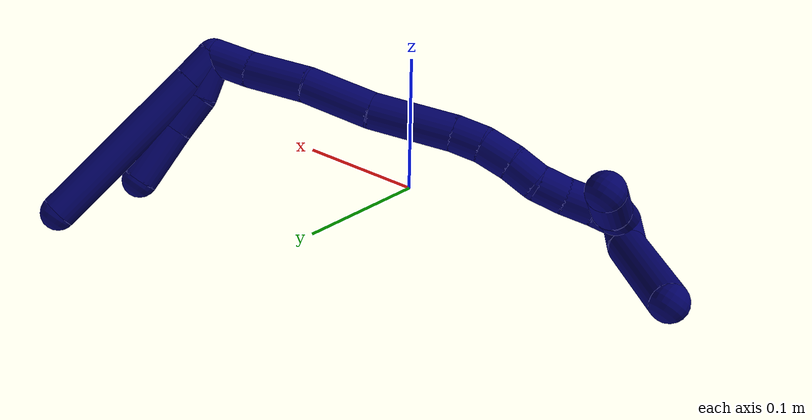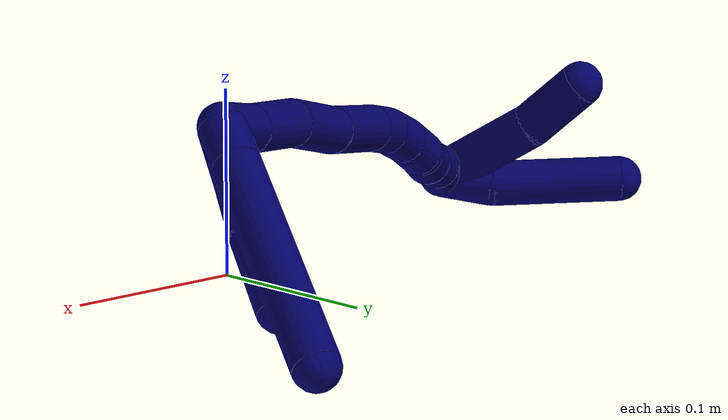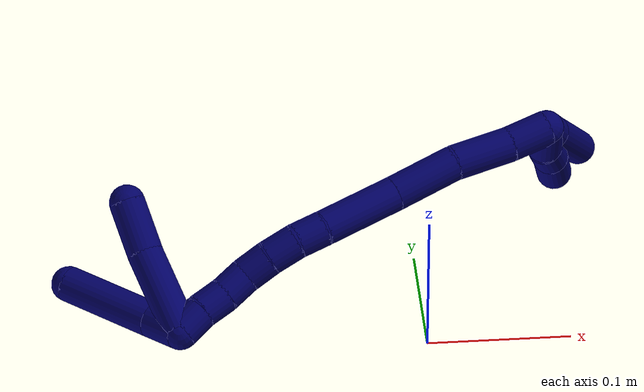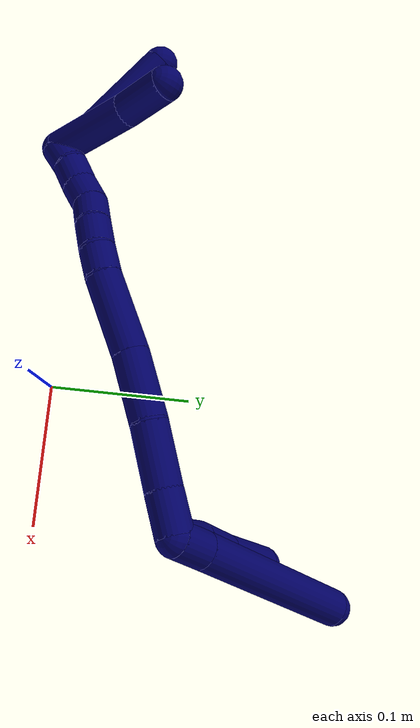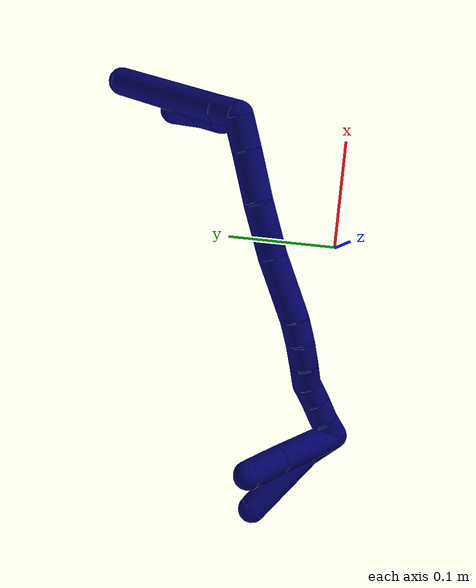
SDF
<sdf version="1.7">
 <world name="default">
  <model name="bin">
   <static>1</static>
   <link name="bottom">
    <collision name="collision-bottom">
     <pose>0 0 -0.01 0 -0 0</pose>
     <geometry><box><size>0.8 0.6 0.02</size></box></geometry>
     <surface>
      <friction><ode><mu>100</mu><mu2>100</mu2></ode></friction>
      <contact><collide_bitmask>65535</collide_bitmask></contact>
     </surface>
    </collision>
   </link>
   <link name="west_wall">
    <collision name="collision-west_wall">
     <pose>-0.41 0 0.1 0 -0 0</pose>
     <geometry><box><size>0.02 0.6 0.2</size></box></geometry>
     <surface>
      <friction><ode><mu>100</mu><mu2>100</mu2></ode></friction>
      <contact><collide_bitmask>65535</collide_bitmask></contact>
     </surface>
    </collision>
   </link>
   <link name="east_wall">
    <collision name="collision-east_wall">
     <pose>0.41 0 0.1 0 -0 0</pose>
     <geometry><box><size>0.02 0.6 0.2</size></box></geometry>
     <surface>
      <friction><ode><mu>100</mu><mu2>100</mu2></ode></friction>
      <contact><collide_bitmask>65535</collide_bitmask></contact>
     </surface>
    </collision>
   </link>
   <link name="south_wall">
    <collision name="collision-south_wall">
     <pose>0 -0.31 0.1 0 -0 0</pose>
     <geometry><box><size>0.8 0.02 0.2</size></box></geometry>
     <surface>
      <friction><ode><mu>100</mu><mu2>100</mu2></ode></friction>
      <contact><collide_bitmask>65535</collide_bitmask></contact>
     </surface>
    </collision>
   </link>
   <link name="north_wall">
    <collision name="collision-north_wall">
     <pose>0 0.31 0.1 0 -0 0</pose>
     <geometry><box><size>0.8 0.02 0.2</size></box></geometry>
     <surface>
      <friction><ode><mu>100</mu><mu2>100</mu2></ode></friction>
      <contact><collide_bitmask>65535</collide_bitmask></contact>
     </surface>
    </collision>
   </link>
  </model>
  <model name="7">
   <static>0</static>
   <link name="7">
    <collision name="collision-cylinder-e_1_2_8">
     <pose>0.001696 0.000565 0.011634 -0.04856 0.144598 -0.003518</pose>
     <geometry><cylinder><radius>0.0125</radius><length>0.023542</length></cylinder></geometry>
     <surface>
      <friction><ode><mu>1.16</mu><mu2>1.16</mu2><slip1>0</slip1><slip2>0</slip2></ode></friction>
      <contact><ode><kp>1e+06</kp><kd>1</kd><max_vel>0</max_vel><min_depth>0.001</min_depth></ode></contact>
     </surface>
    </collision>
    <visual name="visual-cylinder-e_1_2_8">
     <pose>0.001696 0.000565 0.011634 -0.04856 0.144598 -0.003518</pose>
     <geometry><cylinder><radius>0.0125</radius><length>0.023542</length></cylinder></geometry>
     <material><ambient>0.003922 0 0.403922 1</ambient></material>
    </visual>
    <collision name="collision-cylinder-e_2_8_6">
     <pose>0.013681 0.003923 0.085593 -0.044776 0.163442 -0.003668</pose>
     <geometry><cylinder><radius>0.0125</radius><length>0.126458</length></cylinder></geometry>
     <surface>
      <friction><ode><mu>1.16</mu><mu2>1.16</mu2><slip1>0</slip1><slip2>0</slip2></ode></friction>
      <contact><ode><kp>1e+06</kp><kd>1</kd><max_vel>0</max_vel><min_depth>0.001</min_depth></ode></contact>
     </surface>
    </collision>
    <visual name="visual-cylinder-e_2_8_6">
     <pose>0.013681 0.003923 0.085593 -0.044776 0.163442 -0.003668</pose>
     <geometry><cylinder><radius>0.0125</radius><length>0.126458</length></cylinder></geometry>
     <material><ambient>0.003922 0 0.403922 1</ambient></material>
    </visual>
    <collision name="collision-cylinder-e_1_2_9">
     <pose>-0.003665 0.002242 0.013985 -0.158963 -0.253191 0.020274</pose>
     <geometry><cylinder><radius>0.0125</radius><length>0.02926</length></cylinder></geometry>
     <surface>
      <friction><ode><mu>1.16</mu><mu2>1.16</mu2><slip1>0</slip1><slip2>0</slip2></ode></friction>
      <contact><ode><kp>1e+06</kp><kd>1</kd><max_vel>0</max_vel><min_depth>0.001</min_depth></ode></contact>
     </surface>
    </collision>
    <visual name="visual-cylinder-e_1_2_9">
     <pose>-0.003665 0.002242 0.013985 -0.158963 -0.253191 0.020274</pose>
     <geometry><cylinder><radius>0.0125</radius><length>0.02926</length></cylinder></geometry>
     <material><ambient>0.003922 0 0.403922 1</ambient></material>
    </visual>
    <collision name="collision-cylinder-e_2_9_10">
     <pose>-0.006871 0.006577 0.041807 -0.150091 0.032732 -0.002461</pose>
     <geometry><cylinder><radius>0.0125</radius><length>0.028003</length></cylinder></geometry>
     <surface>
      <friction><ode><mu>1.16</mu><mu2>1.16</mu2><slip1>0</slip1><slip2>0</slip2></ode></friction>
      <contact><ode><kp>1e+06</kp><kd>1</kd><max_vel>0</max_vel><min_depth>0.001</min_depth></ode></contact>
     </surface>
    </collision>
    <visual name="visual-cylinder-e_2_9_10">
     <pose>-0.006871 0.006577 0.041807 -0.150091 0.032732 -0.002461</pose>
     <geometry><cylinder><radius>0.0125</radius><length>0.028003</length></cylinder></geometry>
     <material><ambient>0.003922 0 0.403922 1</ambient></material>
    </visual>
    <collision name="collision-cylinder-e_3_10_5">
     <pose>-0.006885 0.010572 0.076922 -0.08921 -0.022079 0.000986</pose>
     <geometry><cylinder><radius>0.0125</radius><length>0.042737</length></cylinder></geometry>
     <surface>
      <friction><ode><mu>1.16</mu><mu2>1.16</mu2><slip1>0</slip1><slip2>0</slip2></ode></friction>
      <contact><ode><kp>1e+06</kp><kd>1</kd><max_vel>0</max_vel><min_depth>0.001</min_depth></ode></contact>
     </surface>
    </collision>
    <visual name="visual-cylinder-e_3_10_5">
     <pose>-0.006885 0.010572 0.076922 -0.08921 -0.022079 0.000986</pose>
     <geometry><cylinder><radius>0.0125</radius><length>0.042737</length></cylinder></geometry>
     <material><ambient>0.003922 0 0.403922 1</ambient></material>
    </visual>
    <collision name="collision-cylinder-e_1_2_11">
     <pose>-0.013266 -0.005239 -0.003092 2.10405 -1.14083 -1.68715</pose>
     <geometry><cylinder><radius>0.0125</radius><length>0.029189</length></cylinder></geometry>
     <surface>
      <friction><ode><mu>1.16</mu><mu2>1.16</mu2><slip1>0</slip1><slip2>0</slip2></ode></friction>
      <contact><ode><kp>1e+06</kp><kd>1</kd><max_vel>0</max_vel><min_depth>0.001</min_depth></ode></contact>
     </surface>
    </collision>
    <visual name="visual-cylinder-e_1_2_11">
     <pose>-0.013266 -0.005239 -0.003092 2.10405 -1.14083 -1.68715</pose>
     <geometry><cylinder><radius>0.0125</radius><length>0.029189</length></cylinder></geometry>
     <material><ambient>0.003922 0 0.403922 1</ambient></material>
    </visual>
    <collision name="collision-cylinder-e_2_11_12">
     <pose>-0.045018 -0.019571 -0.011978 2.138 -1.04278 -1.61669</pose>
     <geometry><cylinder><radius>0.0125</radius><length>0.042802</length></cylinder></geometry>
     <surface>
      <friction><ode><mu>1.16</mu><mu2>1.16</mu2><slip1>0</slip1><slip2>0</slip2></ode></friction>
      <contact><ode><kp>1e+06</kp><kd>1</kd><max_vel>0</max_vel><min_depth>0.001</min_depth></ode></contact>
     </surface>
    </collision>
    <visual name="visual-cylinder-e_2_11_12">
     <pose>-0.045018 -0.019571 -0.011978 2.138 -1.04278 -1.61669</pose>
     <geometry><cylinder><radius>0.0125</radius><length>0.042802</length></cylinder></geometry>
     <material><ambient>0.003922 0 0.403922 1</ambient></material>
    </visual>
    <collision name="collision-cylinder-e_3_12_13">
     <pose>-0.085756 -0.036026 -0.022273 2.11967 -1.20087 -1.76952</pose>
     <geometry><cylinder><radius>0.0125</radius><length>0.047733</length></cylinder></geometry>
     <surface>
      <friction><ode><mu>1.16</mu><mu2>1.16</mu2><slip1>0</slip1><slip2>0</slip2></ode></friction>
      <contact><ode><kp>1e+06</kp><kd>1</kd><max_vel>0</max_vel><min_depth>0.001</min_depth></ode></contact>
     </surface>
    </collision>
    <visual name="visual-cylinder-e_3_12_13">
     <pose>-0.085756 -0.036026 -0.022273 2.11967 -1.20087 -1.76952</pose>
     <geometry><cylinder><radius>0.0125</radius><length>0.047733</length></cylinder></geometry>
     <material><ambient>0.003922 0 0.403922 1</ambient></material>
    </visual>
    <collision name="collision-cylinder-e_4_13_14">
     <pose>-0.133969 -0.051987 -0.035342 2.35434 -1.13341 -1.98513</pose>
     <geometry><cylinder><radius>0.0125</radius><length>0.057318</length></cylinder></geometry>
     <surface>
      <friction><ode><mu>1.16</mu><mu2>1.16</mu2><slip1>0</slip1><slip2>0</slip2></ode></friction>
      <contact><ode><kp>1e+06</kp><kd>1</kd><max_vel>0</max_vel><min_depth>0.001</min_depth></ode></contact>
     </surface>
    </collision>
    <visual name="visual-cylinder-e_4_13_14">
     <pose>-0.133969 -0.051987 -0.035342 2.35434 -1.13341 -1.98513</pose>
     <geometry><cylinder><radius>0.0125</radius><length>0.057318</length></cylinder></geometry>
     <material><ambient>0.003922 0 0.403922 1</ambient></material>
    </visual>
    <collision name="collision-cylinder-e_5_14_15">
     <pose>-0.169427 -0.064105 -0.045843 2.07319 -1.17087 -1.68449</pose>
     <geometry><cylinder><radius>0.0125</radius><length>0.020621</length></cylinder></geometry>
     <surface>
      <friction><ode><mu>1.16</mu><mu2>1.16</mu2><slip1>0</slip1><slip2>0</slip2></ode></friction>
      <contact><ode><kp>1e+06</kp><kd>1</kd><max_vel>0</max_vel><min_depth>0.001</min_depth></ode></contact>
     </surface>
    </collision>
    <visual name="visual-cylinder-e_5_14_15">
     <pose>-0.169427 -0.064105 -0.045843 2.07319 -1.17087 -1.68449</pose>
     <geometry><cylinder><radius>0.0125</radius><length>0.020621</length></cylinder></geometry>
     <material><ambient>0.003922 0 0.403922 1</ambient></material>
    </visual>
    <collision name="collision-cylinder-e_6_15_16">
     <pose>-0.189506 -0.070584 -0.047991 1.64315 -1.29735 -1.3677</pose>
     <geometry><cylinder><radius>0.0125</radius><length>0.021981</length></cylinder></geometry>
     <surface>
      <friction><ode><mu>1.16</mu><mu2>1.16</mu2><slip1>0</slip1><slip2>0</slip2></ode></friction>
      <contact><ode><kp>1e+06</kp><kd>1</kd><max_vel>0</max_vel><min_depth>0.001</min_depth></ode></contact>
     </surface>
    </collision>
    <visual name="visual-cylinder-e_6_15_16">
     <pose>-0.189506 -0.070584 -0.047991 1.64315 -1.29735 -1.3677</pose>
     <geometry><cylinder><radius>0.0125</radius><length>0.021981</length></cylinder></geometry>
     <material><ambient>0.003922 0 0.403922 1</ambient></material>
    </visual>
    <collision name="collision-cylinder-e_7_16_17">
     <pose>-0.210008 -0.075625 -0.047344 1.1785 -1.34759 -0.980544</pose>
     <geometry><cylinder><radius>0.0125</radius><length>0.020344</length></cylinder></geometry>
     <surface>
      <friction><ode><mu>1.16</mu><mu2>1.16</mu2><slip1>0</slip1><slip2>0</slip2></ode></friction>
      <contact><ode><kp>1e+06</kp><kd>1</kd><max_vel>0</max_vel><min_depth>0.001</min_depth></ode></contact>
     </surface>
    </collision>
    <visual name="visual-cylinder-e_7_16_17">
     <pose>-0.210008 -0.075625 -0.047344 1.1785 -1.34759 -0.980544</pose>
     <geometry><cylinder><radius>0.0125</radius><length>0.020344</length></cylinder></geometry>
     <material><ambient>0.003922 0 0.403922 1</ambient></material>
    </visual>
    <collision name="collision-cylinder-e_8_17_18">
     <pose>-0.229785 -0.078215 -0.048114 2.83841 -1.39921 -2.78247</pose>
     <geometry><cylinder><radius>0.0125</radius><length>0.020008</length></cylinder></geometry>
     <surface>
      <friction><ode><mu>1.16</mu><mu2>1.16</mu2><slip1>0</slip1><slip2>0</slip2></ode></friction>
      <contact><ode><kp>1e+06</kp><kd>1</kd><max_vel>0</max_vel><min_depth>0.001</min_depth></ode></contact>
     </surface>
    </collision>
    <visual name="visual-cylinder-e_8_17_18">
     <pose>-0.229785 -0.078215 -0.048114 2.83841 -1.39921 -2.78247</pose>
     <geometry><cylinder><radius>0.0125</radius><length>0.020008</length></cylinder></geometry>
     <material><ambient>0.003922 0 0.403922 1</ambient></material>
    </visual>
    <collision name="collision-cylinder-e_9_18_19">
     <pose>-0.249247 -0.080364 -0.052 2.51347 -1.28823 -2.32513</pose>
     <geometry><cylinder><radius>0.0125</radius><length>0.020003</length></cylinder></geometry>
     <surface>
      <friction><ode><mu>1.16</mu><mu2>1.16</mu2><slip1>0</slip1><slip2>0</slip2></ode></friction>
      <contact><ode><kp>1e+06</kp><kd>1</kd><max_vel>0</max_vel><min_depth>0.001</min_depth></ode></contact>
     </surface>
    </collision>
    <visual name="visual-cylinder-e_9_18_19">
     <pose>-0.249247 -0.080364 -0.052 2.51347 -1.28823 -2.32513</pose>
     <geometry><cylinder><radius>0.0125</radius><length>0.020003</length></cylinder></geometry>
     <material><ambient>0.003922 0 0.403922 1</ambient></material>
    </visual>
    <collision name="collision-cylinder-e_10_19_1">
     <pose>-0.268684 -0.082014 -0.056089 3.13531 -1.38652 -3.13404</pose>
     <geometry><cylinder><radius>0.0125</radius><length>0.020002</length></cylinder></geometry>
     <surface>
      <friction><ode><mu>1.16</mu><mu2>1.16</mu2><slip1>0</slip1><slip2>0</slip2></ode></friction>
      <contact><ode><kp>1e+06</kp><kd>1</kd><max_vel>0</max_vel><min_depth>0.001</min_depth></ode></contact>
     </surface>
    </collision>
    <visual name="visual-cylinder-e_10_19_1">
     <pose>-0.268684 -0.082014 -0.056089 3.13531 -1.38652 -3.13404</pose>
     <geometry><cylinder><radius>0.0125</radius><length>0.020002</length></cylinder></geometry>
     <material><ambient>0.003922 0 0.403922 1</ambient></material>
    </visual>
    <collision name="collision-cylinder-e_1_1_20">
     <pose>-0.281805 -0.09337 -0.049985 0.960331 -0.233286 -0.121903</pose>
     <geometry><cylinder><radius>0.0125</radius><length>0.028462</length></cylinder></geometry>
     <surface>
      <friction><ode><mu>1.16</mu><mu2>1.16</mu2><slip1>0</slip1><slip2>0</slip2></ode></friction>
      <contact><ode><kp>1e+06</kp><kd>1</kd><max_vel>0</max_vel><min_depth>0.001</min_depth></ode></contact>
     </surface>
    </collision>
    <visual name="visual-cylinder-e_1_1_20">
     <pose>-0.281805 -0.09337 -0.049985 0.960331 -0.233286 -0.121903</pose>
     <geometry><cylinder><radius>0.0125</radius><length>0.028462</length></cylinder></geometry>
     <material><ambient>0.003922 0 0.403922 1</ambient></material>
    </visual>
    <collision name="collision-cylinder-e_2_20_4">
     <pose>-0.295106 -0.136992 -0.030328 1.2225 -0.28368 -0.199479</pose>
     <geometry><cylinder><radius>0.0125</radius><length>0.071538</length></cylinder></geometry>
     <surface>
      <friction><ode><mu>1.16</mu><mu2>1.16</mu2><slip1>0</slip1><slip2>0</slip2></ode></friction>
      <contact><ode><kp>1e+06</kp><kd>1</kd><max_vel>0</max_vel><min_depth>0.001</min_depth></ode></contact>
     </surface>
    </collision>
    <visual name="visual-cylinder-e_2_20_4">
     <pose>-0.295106 -0.136992 -0.030328 1.2225 -0.28368 -0.199479</pose>
     <geometry><cylinder><radius>0.0125</radius><length>0.071538</length></cylinder></geometry>
     <material><ambient>0.003922 0 0.403922 1</ambient></material>
    </visual>
    <collision name="collision-cylinder-e_1_1_21">
     <pose>-0.266819 -0.110211 -0.053288 1.40786 0.388642 0.331126</pose>
     <geometry><cylinder><radius>0.0125</radius><length>0.061731</length></cylinder></geometry>
     <surface>
      <friction><ode><mu>1.16</mu><mu2>1.16</mu2><slip1>0</slip1><slip2>0</slip2></ode></friction>
      <contact><ode><kp>1e+06</kp><kd>1</kd><max_vel>0</max_vel><min_depth>0.001</min_depth></ode></contact>
     </surface>
    </collision>
    <visual name="visual-cylinder-e_1_1_21">
     <pose>-0.266819 -0.110211 -0.053288 1.40786 0.388642 0.331126</pose>
     <geometry><cylinder><radius>0.0125</radius><length>0.061731</length></cylinder></geometry>
     <material><ambient>0.003922 0 0.403922 1</ambient></material>
    </visual>
    <collision name="collision-cylinder-e_2_21_3">
     <pose>-0.246334 -0.155392 -0.048728 1.5751 0.477271 0.479252</pose>
     <geometry><cylinder><radius>0.0125</radius><length>0.038269</length></cylinder></geometry>
     <surface>
      <friction><ode><mu>1.16</mu><mu2>1.16</mu2><slip1>0</slip1><slip2>0</slip2></ode></friction>
      <contact><ode><kp>1e+06</kp><kd>1</kd><max_vel>0</max_vel><min_depth>0.001</min_depth></ode></contact>
     </surface>
    </collision>
    <visual name="visual-cylinder-e_2_21_3">
     <pose>-0.246334 -0.155392 -0.048728 1.5751 0.477271 0.479252</pose>
     <geometry><cylinder><radius>0.0125</radius><length>0.038269</length></cylinder></geometry>
     <material><ambient>0.003922 0 0.403922 1</ambient></material>
    </visual>
    <collision name="collision-sphere-3">
     <pose>-0.237544 -0.172388 -0.048801 0 -0 0</pose>
     <geometry><sphere><radius>0.0125</radius></sphere></geometry>
     <surface>
      <friction><ode><mu>1.16</mu><mu2>1.16</mu2><slip1>0</slip1><slip2>0</slip2></ode></friction>
      <contact><ode><kp>1e+06</kp><kd>1</kd><max_vel>0</max_vel><min_depth>0.001</min_depth></ode></contact>
     </surface>
    </collision>
    <visual name="visual-sphere-3">
     <pose>-0.237544 -0.172388 -0.048801 0 -0 0</pose>
     <geometry><sphere><radius>0.0125</radius></sphere></geometry>
     <material><ambient>0.003922 0 0.403922 1</ambient></material>
    </visual>
    <collision name="collision-sphere-21">
     <pose>-0.255123 -0.138396 -0.048654 0 -0 0</pose>
     <geometry><sphere><radius>0.0125</radius></sphere></geometry>
     <surface>
      <friction><ode><mu>1.16</mu><mu2>1.16</mu2><slip1>0</slip1><slip2>0</slip2></ode></friction>
      <contact><ode><kp>1e+06</kp><kd>1</kd><max_vel>0</max_vel><min_depth>0.001</min_depth></ode></contact>
     </surface>
    </collision>
    <visual name="visual-sphere-21">
     <pose>-0.255123 -0.138396 -0.048654 0 -0 0</pose>
     <geometry><sphere><radius>0.0125</radius></sphere></geometry>
     <material><ambient>0.003922 0 0.403922 1</ambient></material>
    </visual>
    <collision name="collision-sphere-4">
     <pose>-0.305118 -0.16927 -0.018608 0 -0 0</pose>
     <geometry><sphere><radius>0.0125</radius></sphere></geometry>
     <surface>
      <friction><ode><mu>1.16</mu><mu2>1.16</mu2><slip1>0</slip1><slip2>0</slip2></ode></friction>
      <contact><ode><kp>1e+06</kp><kd>1</kd><max_vel>0</max_vel><min_depth>0.001</min_depth></ode></contact>
     </surface>
    </collision>
    <visual name="visual-sphere-4">
     <pose>-0.305118 -0.16927 -0.018608 0 -0 0</pose>
     <geometry><sphere><radius>0.0125</radius></sphere></geometry>
     <material><ambient>0.003922 0 0.403922 1</ambient></material>
    </visual>
    <collision name="collision-sphere-20">
     <pose>-0.285095 -0.104715 -0.042048 0 -0 0</pose>
     <geometry><sphere><radius>0.0125</radius></sphere></geometry>
     <surface>
      <friction><ode><mu>1.16</mu><mu2>1.16</mu2><slip1>0</slip1><slip2>0</slip2></ode></friction>
      <contact><ode><kp>1e+06</kp><kd>1</kd><max_vel>0</max_vel><min_depth>0.001</min_depth></ode></contact>
     </surface>
    </collision>
    <visual name="visual-sphere-20">
     <pose>-0.285095 -0.104715 -0.042048 0 -0 0</pose>
     <geometry><sphere><radius>0.0125</radius></sphere></geometry>
     <material><ambient>0.003922 0 0.403922 1</ambient></material>
    </visual>
    <collision name="collision-sphere-5">
     <pose>-0.007357 0.012476 0.0982 0 -0 0</pose>
     <geometry><sphere><radius>0.0125</radius></sphere></geometry>
     <surface>
      <friction><ode><mu>1.16</mu><mu2>1.16</mu2><slip1>0</slip1><slip2>0</slip2></ode></friction>
      <contact><ode><kp>1e+06</kp><kd>1</kd><max_vel>0</max_vel><min_depth>0.001</min_depth></ode></contact>
     </surface>
    </collision>
    <visual name="visual-sphere-5">
     <pose>-0.007357 0.012476 0.0982 0 -0 0</pose>
     <geometry><sphere><radius>0.0125</radius></sphere></geometry>
     <material><ambient>0.003922 0 0.403922 1</ambient></material>
    </visual>
    <collision name="collision-sphere-10">
     <pose>-0.006413 0.008669 0.055644 0 -0 0</pose>
     <geometry><sphere><radius>0.0125</radius></sphere></geometry>
     <surface>
      <friction><ode><mu>1.16</mu><mu2>1.16</mu2><slip1>0</slip1><slip2>0</slip2></ode></friction>
      <contact><ode><kp>1e+06</kp><kd>1</kd><max_vel>0</max_vel><min_depth>0.001</min_depth></ode></contact>
     </surface>
    </collision>
    <visual name="visual-sphere-10">
     <pose>-0.006413 0.008669 0.055644 0 -0 0</pose>
     <geometry><sphere><radius>0.0125</radius></sphere></geometry>
     <material><ambient>0.003922 0 0.403922 1</ambient></material>
    </visual>
    <collision name="collision-sphere-6">
     <pose>0.023969 0.006716 0.147917 0 -0 0</pose>
     <geometry><sphere><radius>0.0125</radius></sphere></geometry>
     <surface>
      <friction><ode><mu>1.16</mu><mu2>1.16</mu2><slip1>0</slip1><slip2>0</slip2></ode></friction>
      <contact><ode><kp>1e+06</kp><kd>1</kd><max_vel>0</max_vel><min_depth>0.001</min_depth></ode></contact>
     </surface>
    </collision>
    <visual name="visual-sphere-6">
     <pose>0.023969 0.006716 0.147917 0 -0 0</pose>
     <geometry><sphere><radius>0.0125</radius></sphere></geometry>
     <material><ambient>0.003922 0 0.403922 1</ambient></material>
    </visual>
    <collision name="collision-sphere-9">
     <pose>-0.007329 0.004484 0.02797 0 -0 0</pose>
     <geometry><sphere><radius>0.0125</radius></sphere></geometry>
     <surface>
      <friction><ode><mu>1.16</mu><mu2>1.16</mu2><slip1>0</slip1><slip2>0</slip2></ode></friction>
      <contact><ode><kp>1e+06</kp><kd>1</kd><max_vel>0</max_vel><min_depth>0.001</min_depth></ode></contact>
     </surface>
    </collision>
    <visual name="visual-sphere-9">
     <pose>-0.007329 0.004484 0.02797 0 -0 0</pose>
     <geometry><sphere><radius>0.0125</radius></sphere></geometry>
     <material><ambient>0.003922 0 0.403922 1</ambient></material>
    </visual>
    <collision name="collision-sphere-2">
     <geometry><sphere><radius>0.0125</radius></sphere></geometry>
     <surface>
      <friction><ode><mu>1.16</mu><mu2>1.16</mu2><slip1>0</slip1><slip2>0</slip2></ode></friction>
      <contact><ode><kp>1e+06</kp><kd>1</kd><max_vel>0</max_vel><min_depth>0.001</min_depth></ode></contact>
     </surface>
    </collision>
    <visual name="visual-sphere-2">
     <geometry><sphere><radius>0.0125</radius></sphere></geometry>
     <material><ambient>0.003922 0 0.403922 1</ambient></material>
    </visual>
    <collision name="collision-sphere-19">
     <pose>-0.258852 -0.082003 -0.054257 0 -0 0</pose>
     <geometry><sphere><radius>0.0125</radius></sphere></geometry>
     <surface>
      <friction><ode><mu>1.16</mu><mu2>1.16</mu2><slip1>0</slip1><slip2>0</slip2></ode></friction>
      <contact><ode><kp>1e+06</kp><kd>1</kd><max_vel>0</max_vel><min_depth>0.001</min_depth></ode></contact>
     </surface>
    </collision>
    <visual name="visual-sphere-19">
     <pose>-0.258852 -0.082003 -0.054257 0 -0 0</pose>
     <geometry><sphere><radius>0.0125</radius></sphere></geometry>
     <material><ambient>0.003922 0 0.403922 1</ambient></material>
    </visual>
    <collision name="collision-sphere-8">
     <pose>0.003392 0.001131 0.023269 0 -0 0</pose>
     <geometry><sphere><radius>0.0125</radius></sphere></geometry>
     <surface>
      <friction><ode><mu>1.16</mu><mu2>1.16</mu2><slip1>0</slip1><slip2>0</slip2></ode></friction>
      <contact><ode><kp>1e+06</kp><kd>1</kd><max_vel>0</max_vel><min_depth>0.001</min_depth></ode></contact>
     </surface>
    </collision>
    <visual name="visual-sphere-8">
     <pose>0.003392 0.001131 0.023269 0 -0 0</pose>
     <geometry><sphere><radius>0.0125</radius></sphere></geometry>
     <material><ambient>0.003922 0 0.403922 1</ambient></material>
    </visual>
    <collision name="collision-sphere-11">
     <pose>-0.026532 -0.010478 -0.006185 0 -0 0</pose>
     <geometry><sphere><radius>0.0125</radius></sphere></geometry>
     <surface>
      <friction><ode><mu>1.16</mu><mu2>1.16</mu2><slip1>0</slip1><slip2>0</slip2></ode></friction>
      <contact><ode><kp>1e+06</kp><kd>1</kd><max_vel>0</max_vel><min_depth>0.001</min_depth></ode></contact>
     </surface>
    </collision>
    <visual name="visual-sphere-11">
     <pose>-0.026532 -0.010478 -0.006185 0 -0 0</pose>
     <geometry><sphere><radius>0.0125</radius></sphere></geometry>
     <material><ambient>0.003922 0 0.403922 1</ambient></material>
    </visual>
    <collision name="collision-sphere-12">
     <pose>-0.063504 -0.028665 -0.017771 0 -0 0</pose>
     <geometry><sphere><radius>0.0125</radius></sphere></geometry>
     <surface>
      <friction><ode><mu>1.16</mu><mu2>1.16</mu2><slip1>0</slip1><slip2>0</slip2></ode></friction>
      <contact><ode><kp>1e+06</kp><kd>1</kd><max_vel>0</max_vel><min_depth>0.001</min_depth></ode></contact>
     </surface>
    </collision>
    <visual name="visual-sphere-12">
     <pose>-0.063504 -0.028665 -0.017771 0 -0 0</pose>
     <geometry><sphere><radius>0.0125</radius></sphere></geometry>
     <material><ambient>0.003922 0 0.403922 1</ambient></material>
    </visual>
    <collision name="collision-sphere-13">
     <pose>-0.108008 -0.043388 -0.026775 0 -0 0</pose>
     <geometry><sphere><radius>0.0125</radius></sphere></geometry>
     <surface>
      <friction><ode><mu>1.16</mu><mu2>1.16</mu2><slip1>0</slip1><slip2>0</slip2></ode></friction>
      <contact><ode><kp>1e+06</kp><kd>1</kd><max_vel>0</max_vel><min_depth>0.001</min_depth></ode></contact>
     </surface>
    </collision>
    <visual name="visual-sphere-13">
     <pose>-0.108008 -0.043388 -0.026775 0 -0 0</pose>
     <geometry><sphere><radius>0.0125</radius></sphere></geometry>
     <material><ambient>0.003922 0 0.403922 1</ambient></material>
    </visual>
    <collision name="collision-sphere-14">
     <pose>-0.159931 -0.060587 -0.04391 0 -0 0</pose>
     <geometry><sphere><radius>0.0125</radius></sphere></geometry>
     <surface>
      <friction><ode><mu>1.16</mu><mu2>1.16</mu2><slip1>0</slip1><slip2>0</slip2></ode></friction>
      <contact><ode><kp>1e+06</kp><kd>1</kd><max_vel>0</max_vel><min_depth>0.001</min_depth></ode></contact>
     </surface>
    </collision>
    <visual name="visual-sphere-14">
     <pose>-0.159931 -0.060587 -0.04391 0 -0 0</pose>
     <geometry><sphere><radius>0.0125</radius></sphere></geometry>
     <material><ambient>0.003922 0 0.403922 1</ambient></material>
    </visual>
    <collision name="collision-sphere-15">
     <pose>-0.178924 -0.067623 -0.047776 0 -0 0</pose>
     <geometry><sphere><radius>0.0125</radius></sphere></geometry>
     <surface>
      <friction><ode><mu>1.16</mu><mu2>1.16</mu2><slip1>0</slip1><slip2>0</slip2></ode></friction>
      <contact><ode><kp>1e+06</kp><kd>1</kd><max_vel>0</max_vel><min_depth>0.001</min_depth></ode></contact>
     </surface>
    </collision>
    <visual name="visual-sphere-15">
     <pose>-0.178924 -0.067623 -0.047776 0 -0 0</pose>
     <geometry><sphere><radius>0.0125</radius></sphere></geometry>
     <material><ambient>0.003922 0 0.403922 1</ambient></material>
    </visual>
    <collision name="collision-sphere-16">
     <pose>-0.200088 -0.073544 -0.048205 0 -0 0</pose>
     <geometry><sphere><radius>0.0125</radius></sphere></geometry>
     <surface>
      <friction><ode><mu>1.16</mu><mu2>1.16</mu2><slip1>0</slip1><slip2>0</slip2></ode></friction>
      <contact><ode><kp>1e+06</kp><kd>1</kd><max_vel>0</max_vel><min_depth>0.001</min_depth></ode></contact>
     </surface>
    </collision>
    <visual name="visual-sphere-16">
     <pose>-0.200088 -0.073544 -0.048205 0 -0 0</pose>
     <geometry><sphere><radius>0.0125</radius></sphere></geometry>
     <material><ambient>0.003922 0 0.403922 1</ambient></material>
    </visual>
    <collision name="collision-sphere-17">
     <pose>-0.219928 -0.077705 -0.046483 0 -0 0</pose>
     <geometry><sphere><radius>0.0125</radius></sphere></geometry>
     <surface>
      <friction><ode><mu>1.16</mu><mu2>1.16</mu2><slip1>0</slip1><slip2>0</slip2></ode></friction>
      <contact><ode><kp>1e+06</kp><kd>1</kd><max_vel>0</max_vel><min_depth>0.001</min_depth></ode></contact>
     </surface>
    </collision>
    <visual name="visual-sphere-17">
     <pose>-0.219928 -0.077705 -0.046483 0 -0 0</pose>
     <geometry><sphere><radius>0.0125</radius></sphere></geometry>
     <material><ambient>0.003922 0 0.403922 1</ambient></material>
    </visual>
    <collision name="collision-sphere-18">
     <pose>-0.239642 -0.078725 -0.049744 0 -0 0</pose>
     <geometry><sphere><radius>0.0125</radius></sphere></geometry>
     <surface>
      <friction><ode><mu>1.16</mu><mu2>1.16</mu2><slip1>0</slip1><slip2>0</slip2></ode></friction>
      <contact><ode><kp>1e+06</kp><kd>1</kd><max_vel>0</max_vel><min_depth>0.001</min_depth></ode></contact>
     </surface>
    </collision>
    <visual name="visual-sphere-18">
     <pose>-0.239642 -0.078725 -0.049744 0 -0 0</pose>
     <geometry><sphere><radius>0.0125</radius></sphere></geometry>
     <material><ambient>0.003922 0 0.403922 1</ambient></material>
    </visual>
    <collision name="collision-sphere-1">
     <pose>-0.278515 -0.082026 -0.057922 0 -0 0</pose>
     <geometry><sphere><radius>0.0125</radius></sphere></geometry>
     <surface>
      <friction><ode><mu>1.16</mu><mu2>1.16</mu2><slip1>0</slip1><slip2>0</slip2></ode></friction>
      <contact><ode><kp>1e+06</kp><kd>1</kd><max_vel>0</max_vel><min_depth>0.001</min_depth></ode></contact>
     </surface>
    </collision>
    <visual name="visual-sphere-1">
     <pose>-0.278515 -0.082026 -0.057922 0 -0 0</pose>
     <geometry><sphere><radius>0.0125</radius></sphere></geometry>
     <material><ambient>0.003922 0 0.403922 1</ambient></material>
    </visual>
    <inertial>
     <pose>-0.126439 -0.051882 -0.003415 0 -0 0</pose>
     <mass>0.75</mass>
     <inertia>
      <ixx>0.000206</ixx>
      <ixy>0</ixy>
      <ixz>0</ixz>
      <iyy>0.000219</iyy>
      <iyz>0</iyz>
      <izz>9.9e-05</izz>
     </inertia>
    </inertial>
   </link>
   <pose>0.091722 0.101836 0.106026 -2.56903 -0.589493 0.543167</pose>
  </model>
 </world>
</sdf>
